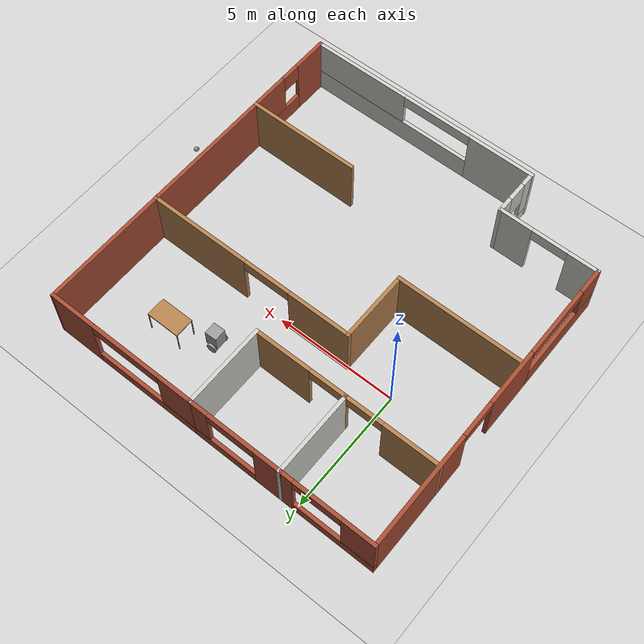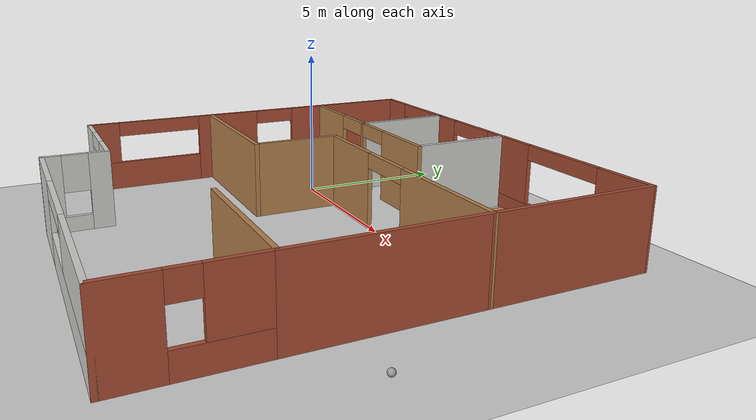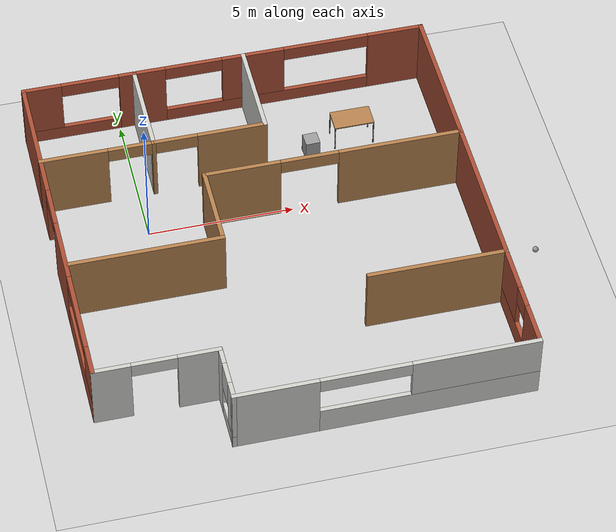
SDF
<sdf version="1.6">
 <world name="default">
  <model name="ground_plane">
   <static>1</static>
   <link name="link">
    <collision name="collision">
     <geometry><plane><normal>0 0 1</normal><size>100 100</size></plane></geometry>
     <surface><friction><ode><mu>100</mu><mu2>50</mu2></ode></friction></surface>
    </collision>
    <visual name="visual">
     <cast_shadows>0</cast_shadows>
     <geometry><plane><normal>0 0 1</normal><size>100 100</size></plane></geometry>
     <material>
      <script><uri>file://media/materials/scripts/gazebo.material</uri><name>Gazebo/Grey</name></script>
     </material>
    </visual>
   </link>
  </model>
  <model name="mybuilding">
   <pose>3.78931 -2.0956 0 0 -0 0</pose>
   <link name="Wall_100">
    <pose>-4.97405 -5.32475 0 0 -0 0</pose>
    <visual name="Wall_100_Visual_0">
     <pose>-1.47284 0 1.25 0 -0 0</pose>
     <geometry><box><size>1.30431 0.15 2.5</size></box></geometry>
     <material>
      <script><uri>file://media/materials/scripts/gazebo.material</uri><name>Gazebo/CeilingTiled</name></script>
      <ambient>0.435294 0.796078 0.67451 1</ambient>
     </material>
    </visual>
    <collision name="Wall_100_Collision_0">
     <geometry><box><size>1.30431 0.15 2.5</size></box></geometry>
     <pose>-1.47284 0 1.25 0 -0 0</pose>
    </collision>
    <visual name="Wall_100_Visual_1">
     <pose>1.40216 0 1.25 0 -0 0</pose>
     <geometry><box><size>1.44569 0.15 2.5</size></box></geometry>
     <material>
      <script><uri>file://media/materials/scripts/gazebo.material</uri><name>Gazebo/CeilingTiled</name></script>
      <ambient>0.435294 0.796078 0.67451 1</ambient>
     </material>
    </visual>
    <collision name="Wall_100_Collision_1">
     <geometry><box><size>1.44569 0.15 2.5</size></box></geometry>
     <pose>1.40216 0 1.25 0 -0 0</pose>
    </collision>
    <visual name="Wall_100_Visual_2">
     <pose>-0.07069 0 2.25 0 -0 0</pose>
     <geometry><box><size>1.5 0.15 0.5</size></box></geometry>
     <material>
      <script><uri>file://media/materials/scripts/gazebo.material</uri><name>Gazebo/CeilingTiled</name></script>
      <ambient>0.435294 0.796078 0.67451 1</ambient>
     </material>
    </visual>
    <collision name="Wall_100_Collision_2">
     <geometry><box><size>1.5 0.15 0.5</size></box></geometry>
     <pose>-0.07069 0 2.25 0 -0 0</pose>
    </collision>
   </link>
   <link name="Wall_102">
    <pose>-2.91535 -6.30192 0 0 0 -1.5708</pose>
    <visual name="Wall_102_Visual_0">
     <pose>-0.715877 0 1.25 0 -0 0</pose>
     <geometry><box><size>0.672904 0.15 2.5</size></box></geometry>
     <material>
      <script><uri>file://media/materials/scripts/gazebo.material</uri><name>Gazebo/CeilingTiled</name></script>
      <ambient>1 0.764706 0.305882 1</ambient>
     </material>
    </visual>
    <collision name="Wall_102_Collision_0">
     <geometry><box><size>0.672904 0.15 2.5</size></box></geometry>
     <pose>-0.715877 0 1.25 0 -0 0</pose>
    </collision>
    <visual name="Wall_102_Visual_1">
     <pose>0.336452 0 0.25 0 -0 0</pose>
     <geometry><box><size>1.43175 0.15 0.5</size></box></geometry>
     <material>
      <script><uri>file://media/materials/scripts/gazebo.material</uri><name>Gazebo/CeilingTiled</name></script>
      <ambient>1 0.764706 0.305882 1</ambient>
     </material>
    </visual>
    <collision name="Wall_102_Collision_1">
     <geometry><box><size>1.43175 0.15 0.5</size></box></geometry>
     <pose>0.336452 0 0.25 0 -0 0</pose>
    </collision>
    <visual name="Wall_102_Visual_2">
     <pose>0.736452 0 1.5 0 -0 0</pose>
     <geometry><box><size>0.631753 0.15 2</size></box></geometry>
     <material>
      <script><uri>file://media/materials/scripts/gazebo.material</uri><name>Gazebo/CeilingTiled</name></script>
      <ambient>1 0.764706 0.305882 1</ambient>
     </material>
    </visual>
    <collision name="Wall_102_Collision_2">
     <geometry><box><size>0.631753 0.15 2</size></box></geometry>
     <pose>0.736452 0 1.5 0 -0 0</pose>
    </collision>
    <visual name="Wall_102_Visual_3">
     <pose>0.020576 0 1.9 0 -0 0</pose>
     <geometry><box><size>0.8 0.15 1.2</size></box></geometry>
     <material>
      <script><uri>file://media/materials/scripts/gazebo.material</uri><name>Gazebo/CeilingTiled</name></script>
      <ambient>1 0.764706 0.305882 1</ambient>
     </material>
    </visual>
    <collision name="Wall_102_Collision_3">
     <geometry><box><size>0.8 0.15 1.2</size></box></geometry>
     <pose>0.020576 0 1.9 0 -0 0</pose>
    </collision>
   </link>
   <link name="Wall_104">
    <pose>2.05282 -7.27925 0 0 0 -3.1e-05</pose>
    <visual name="Wall_104_Visual_0">
     <pose>-3.62649 0 1.25 0 -0 0</pose>
     <geometry><box><size>2.85075 0.15 2.5</size></box></geometry>
     <material>
      <script><uri>file://media/materials/scripts/gazebo.material</uri><name>Gazebo/CeilingTiled</name></script>
      <ambient>0.435294 0.796078 0.67451 1</ambient>
     </material>
    </visual>
    <collision name="Wall_104_Collision_0">
     <geometry><box><size>2.85075 0.15 2.5</size></box></geometry>
     <pose>-3.62649 0 1.25 0 -0 0</pose>
    </collision>
    <visual name="Wall_104_Visual_1">
     <pose>1.42538 0 0.5 0 -0 0</pose>
     <geometry><box><size>7.25299 0.15 1</size></box></geometry>
     <material>
      <script><uri>file://media/materials/scripts/gazebo.material</uri><name>Gazebo/CeilingTiled</name></script>
      <ambient>0.435294 0.796078 0.67451 1</ambient>
     </material>
    </visual>
    <collision name="Wall_104_Collision_1">
     <geometry><box><size>7.25299 0.15 1</size></box></geometry>
     <pose>1.42538 0 0.5 0 -0 0</pose>
    </collision>
    <visual name="Wall_104_Visual_2">
     <pose>2.92537 0 1.75 0 -0 0</pose>
     <geometry><box><size>4.25299 0.15 1.5</size></box></geometry>
     <material>
      <script><uri>file://media/materials/scripts/gazebo.material</uri><name>Gazebo/CeilingTiled</name></script>
      <ambient>0.435294 0.796078 0.67451 1</ambient>
     </material>
    </visual>
    <collision name="Wall_104_Collision_2">
     <geometry><box><size>4.25299 0.15 1.5</size></box></geometry>
     <pose>2.92537 0 1.75 0 -0 0</pose>
    </collision>
    <visual name="Wall_104_Visual_3">
     <pose>-0.70112 0 2.25 0 -0 0</pose>
     <geometry><box><size>3 0.15 0.5</size></box></geometry>
     <material>
      <script><uri>file://media/materials/scripts/gazebo.material</uri><name>Gazebo/CeilingTiled</name></script>
      <ambient>0.435294 0.796078 0.67451 1</ambient>
     </material>
    </visual>
    <collision name="Wall_104_Collision_3">
     <geometry><box><size>3 0.15 0.5</size></box></geometry>
     <pose>-0.70112 0 2.25 0 -0 0</pose>
    </collision>
   </link>
   <link name="Wall_106">
    <pose>7.02969 -5.3499 0 0 -0 1.5708</pose>
    <visual name="Wall_106_Visual_0">
     <pose>-1.23742 0 1.25 0 -0 0</pose>
     <geometry><box><size>1.53383 0.15 2.5</size></box></geometry>
     <material>
      <script><uri>file://media/materials/scripts/gazebo.material</uri><name>Gazebo/Bricks</name></script>
      <ambient>1 1 1 1</ambient>
     </material>
    </visual>
    <collision name="Wall_106_Collision_0">
     <geometry><box><size>1.53383 0.15 2.5</size></box></geometry>
     <pose>-1.23742 0 1.25 0 -0 0</pose>
    </collision>
    <visual name="Wall_106_Visual_1">
     <pose>0.766915 0 0.375 0 -0 0</pose>
     <geometry><box><size>2.47484 0.15 0.75</size></box></geometry>
     <material>
      <script><uri>file://media/materials/scripts/gazebo.material</uri><name>Gazebo/Bricks</name></script>
      <ambient>1 1 1 1</ambient>
     </material>
    </visual>
    <collision name="Wall_106_Collision_1">
     <geometry><box><size>2.47484 0.15 0.75</size></box></geometry>
     <pose>0.766915 0 0.375 0 -0 0</pose>
    </collision>
    <visual name="Wall_106_Visual_2">
     <pose>1.16691 0 1.625 0 -0 0</pose>
     <geometry><box><size>1.67484 0.15 1.75</size></box></geometry>
     <material>
      <script><uri>file://media/materials/scripts/gazebo.material</uri><name>Gazebo/Bricks</name></script>
      <ambient>1 1 1 1</ambient>
     </material>
    </visual>
    <collision name="Wall_106_Collision_2">
     <geometry><box><size>1.67484 0.15 1.75</size></box></geometry>
     <pose>1.16691 0 1.625 0 -0 0</pose>
    </collision>
    <visual name="Wall_106_Visual_3">
     <pose>-0.070504 0 2.125 0 -0 0</pose>
     <geometry><box><size>0.8 0.15 0.75</size></box></geometry>
     <material>
      <script><uri>file://media/materials/scripts/gazebo.material</uri><name>Gazebo/Bricks</name></script>
      <ambient>1 1 1 1</ambient>
     </material>
    </visual>
    <collision name="Wall_106_Collision_3">
     <geometry><box><size>0.8 0.15 0.75</size></box></geometry>
     <pose>-0.070504 0 2.125 0 -0 0</pose>
    </collision>
   </link>
   <link name="Wall_108">
    <collision name="Wall_108_Collision">
     <geometry><box><size>4.75 0.15 2.5</size></box></geometry>
     <pose>0 0 1.25 0 -0 0</pose>
    </collision>
    <visual name="Wall_108_Visual">
     <pose>0 0 1.25 0 -0 0</pose>
     <geometry><box><size>4.75 0.15 2.5</size></box></geometry>
     <material>
      <script><uri>file://media/materials/scripts/gazebo.material</uri><name>Gazebo/Wood</name></script>
      <ambient>1 1 0.498039 1</ambient>
     </material>
    </visual>
    <pose>4.72945 -3.42056 0 0 0 -3.14152</pose>
   </link>
   <link name="Wall_110">
    <collision name="Wall_110_Collision">
     <geometry><box><size>5.666 0.15 2.5</size></box></geometry>
     <pose>0 0 1.25 0 -0 0</pose>
    </collision>
    <visual name="Wall_110_Visual">
     <pose>0 0 1.25 0 -0 0</pose>
     <geometry><box><size>5.666 0.15 2.5</size></box></geometry>
     <material>
      <script><uri>file://media/materials/scripts/gazebo.material</uri><name>Gazebo/Bricks</name></script>
      <ambient>1 1 1 1</ambient>
     </material>
    </visual>
    <pose>7.02969 -0.662398 0 0 -0 1.5708</pose>
   </link>
   <link name="Wall_112">
    <pose>2.60469 2.0956 0 0 -0 3.14159</pose>
    <visual name="Wall_112_Visual_0">
     <pose>-2.34058 0 1.25 0 -0 0</pose>
     <geometry><box><size>4.31883 0.15 2.5</size></box></geometry>
     <material>
      <script><uri>file://media/materials/scripts/gazebo.material</uri><name>Gazebo/Wood</name></script>
      <ambient>1 1 0.498039 1</ambient>
     </material>
    </visual>
    <collision name="Wall_112_Collision_0">
     <geometry><box><size>4.31883 0.15 2.5</size></box></geometry>
     <pose>-2.34058 0 1.25 0 -0 0</pose>
    </collision>
    <visual name="Wall_112_Visual_1">
     <pose>3.15942 0 1.25 0 -0 0</pose>
     <geometry><box><size>2.68117 0.15 2.5</size></box></geometry>
     <material>
      <script><uri>file://media/materials/scripts/gazebo.material</uri><name>Gazebo/Wood</name></script>
      <ambient>1 1 0.498039 1</ambient>
     </material>
    </visual>
    <collision name="Wall_112_Collision_1">
     <geometry><box><size>2.68117 0.15 2.5</size></box></geometry>
     <pose>3.15942 0 1.25 0 -0 0</pose>
    </collision>
    <visual name="Wall_112_Visual_2">
     <pose>0.81883 0 2.25 0 -0 0</pose>
     <geometry><box><size>2 0.15 0.5</size></box></geometry>
     <material>
      <script><uri>file://media/materials/scripts/gazebo.material</uri><name>Gazebo/Wood</name></script>
      <ambient>1 1 0.498039 1</ambient>
     </material>
    </visual>
    <collision name="Wall_112_Collision_2">
     <geometry><box><size>2 0.15 0.5</size></box></geometry>
     <pose>0.81883 0 2.25 0 -0 0</pose>
    </collision>
   </link>
   <link name="Wall_114">
    <collision name="Wall_114_Collision">
     <geometry><box><size>5.33367 0.15 2.5</size></box></geometry>
     <pose>0 0 1.25 0 -0 0</pose>
    </collision>
    <visual name="Wall_114_Visual">
     <pose>0 0 1.25 0 -0 0</pose>
     <geometry><box><size>5.33367 0.15 2.5</size></box></geometry>
     <material>
      <script><uri>file://media/materials/scripts/gazebo.material</uri><name>Gazebo/Bricks</name></script>
      <ambient>1 1 1 1</ambient>
     </material>
    </visual>
    <pose>7.02493 4.68743 0 0 -0 1.57263</pose>
   </link>
   <link name="Wall_119">
    <pose>3.84517 7.27926 0 0 -0 3.14159</pose>
    <visual name="Wall_119_Visual_0">
     <pose>-2.25429 0 1.25 0 -0 0</pose>
     <geometry><box><size>1.99143 0.15 2.5</size></box></geometry>
     <material>
      <script><uri>file://media/materials/scripts/gazebo.material</uri><name>Gazebo/Bricks</name></script>
      <ambient>1 1 1 1</ambient>
     </material>
    </visual>
    <collision name="Wall_119_Collision_0">
     <geometry><box><size>1.99143 0.15 2.5</size></box></geometry>
     <pose>-2.25429 0 1.25 0 -0 0</pose>
    </collision>
    <visual name="Wall_119_Visual_1">
     <pose>0.995713 0 0.25 0 -0 0</pose>
     <geometry><box><size>4.50857 0.15 0.5</size></box></geometry>
     <material>
      <script><uri>file://media/materials/scripts/gazebo.material</uri><name>Gazebo/Bricks</name></script>
      <ambient>1 1 1 1</ambient>
     </material>
    </visual>
    <collision name="Wall_119_Collision_1">
     <geometry><box><size>4.50857 0.15 0.5</size></box></geometry>
     <pose>0.995713 0 0.25 0 -0 0</pose>
    </collision>
    <visual name="Wall_119_Visual_2">
     <pose>2.49571 0 1.5 0 -0 0</pose>
     <geometry><box><size>1.50857 0.15 2</size></box></geometry>
     <material>
      <script><uri>file://media/materials/scripts/gazebo.material</uri><name>Gazebo/Bricks</name></script>
      <ambient>1 1 1 1</ambient>
     </material>
    </visual>
    <collision name="Wall_119_Collision_2">
     <geometry><box><size>1.50857 0.15 2</size></box></geometry>
     <pose>2.49571 0 1.5 0 -0 0</pose>
    </collision>
    <visual name="Wall_119_Visual_3">
     <pose>0.241426 0 2.25 0 -0 0</pose>
     <geometry><box><size>3 0.15 0.5</size></box></geometry>
     <material>
      <script><uri>file://media/materials/scripts/gazebo.material</uri><name>Gazebo/Bricks</name></script>
      <ambient>1 1 1 1</ambient>
     </material>
    </visual>
    <collision name="Wall_119_Collision_3">
     <geometry><box><size>3 0.15 0.5</size></box></geometry>
     <pose>0.241426 0 2.25 0 -0 0</pose>
    </collision>
   </link>
   <link name="Wall_121">
    <collision name="Wall_121_Collision">
     <geometry><box><size>3.5 0.15 2.5</size></box></geometry>
     <pose>0 0 1.25 0 -0 0</pose>
    </collision>
    <visual name="Wall_121_Visual">
     <pose>0 0 1.25 0 -0 0</pose>
     <geometry><box><size>3.5 0.15 2.5</size></box></geometry>
     <material>
      <script><uri>file://media/materials/scripts/gazebo.material</uri><name>Gazebo/CeilingTiled</name></script>
      <ambient>0.333333 0.333333 0.498039 1</ambient>
     </material>
    </visual>
    <pose>0.670175 5.60426 0 0 0 -1.5708</pose>
   </link>
   <link name="Wall_123">
    <pose>-1.25483 3.92926 0 0 -0 3.14159</pose>
    <visual name="Wall_123_Visual_0">
     <pose>-0.793117 0 1.25 0 -0 0</pose>
     <geometry><box><size>2.41377 0.15 2.5</size></box></geometry>
     <material>
      <script><uri>file://media/materials/scripts/gazebo.material</uri><name>Gazebo/Wood</name></script>
      <ambient>1 1 1 1</ambient>
     </material>
    </visual>
    <collision name="Wall_123_Collision_0">
     <geometry><box><size>2.41377 0.15 2.5</size></box></geometry>
     <pose>-0.793117 0 1.25 0 -0 0</pose>
    </collision>
    <visual name="Wall_123_Visual_1">
     <pose>1.95688 0 1.25 0 -0 0</pose>
     <geometry><box><size>0.086235 0.15 2.5</size></box></geometry>
     <material>
      <script><uri>file://media/materials/scripts/gazebo.material</uri><name>Gazebo/Wood</name></script>
      <ambient>1 1 1 1</ambient>
     </material>
    </visual>
    <collision name="Wall_123_Collision_1">
     <geometry><box><size>0.086235 0.15 2.5</size></box></geometry>
     <pose>1.95688 0 1.25 0 -0 0</pose>
    </collision>
    <visual name="Wall_123_Visual_2">
     <pose>1.16376 0 2.25 0 -0 0</pose>
     <geometry><box><size>1.5 0.15 0.5</size></box></geometry>
     <material>
      <script><uri>file://media/materials/scripts/gazebo.material</uri><name>Gazebo/Wood</name></script>
      <ambient>1 1 1 1</ambient>
     </material>
    </visual>
    <collision name="Wall_123_Collision_2">
     <geometry><box><size>1.5 0.15 0.5</size></box></geometry>
     <pose>1.16376 0 2.25 0 -0 0</pose>
    </collision>
   </link>
   <link name="Wall_124">
    <collision name="Wall_124_Collision">
     <geometry><box><size>3.5 0.15 2.5</size></box></geometry>
     <pose>0 0 1.25 0 -0 0</pose>
    </collision>
    <visual name="Wall_124_Visual">
     <pose>0 0 1.25 0 -0 0</pose>
     <geometry><box><size>3.5 0.15 2.5</size></box></geometry>
     <material>
      <script><uri>file://media/materials/scripts/gazebo.material</uri><name>Gazebo/CeilingTiled</name></script>
      <ambient>0.333333 0.333333 0.498039 1</ambient>
     </material>
    </visual>
    <pose>-3.17983 5.60426 0 0 -0 1.5708</pose>
   </link>
   <link name="Wall_125">
    <pose>-1.25483 7.27926 0 0 -0 0</pose>
    <visual name="Wall_125_Visual_0">
     <pose>-1.41847 0 1.25 0 -0 0</pose>
     <geometry><box><size>1.16306 0.15 2.5</size></box></geometry>
     <material>
      <script><uri>file://media/materials/scripts/gazebo.material</uri><name>Gazebo/Bricks</name></script>
      <ambient>1 1 1 1</ambient>
     </material>
    </visual>
    <collision name="Wall_125_Collision_0">
     <geometry><box><size>1.16306 0.15 2.5</size></box></geometry>
     <pose>-1.41847 0 1.25 0 -0 0</pose>
    </collision>
    <visual name="Wall_125_Visual_1">
     <pose>0.581531 0 0.25 0 -0 0</pose>
     <geometry><box><size>2.83694 0.15 0.5</size></box></geometry>
     <material>
      <script><uri>file://media/materials/scripts/gazebo.material</uri><name>Gazebo/Bricks</name></script>
      <ambient>1 1 1 1</ambient>
     </material>
    </visual>
    <collision name="Wall_125_Collision_1">
     <geometry><box><size>2.83694 0.15 0.5</size></box></geometry>
     <pose>0.581531 0 0.25 0 -0 0</pose>
    </collision>
    <visual name="Wall_125_Visual_2">
     <pose>1.58153 0 1.5 0 -0 0</pose>
     <geometry><box><size>0.836939 0.15 2</size></box></geometry>
     <material>
      <script><uri>file://media/materials/scripts/gazebo.material</uri><name>Gazebo/Bricks</name></script>
      <ambient>1 1 1 1</ambient>
     </material>
    </visual>
    <collision name="Wall_125_Collision_2">
     <geometry><box><size>0.836939 0.15 2</size></box></geometry>
     <pose>1.58153 0 1.5 0 -0 0</pose>
    </collision>
    <visual name="Wall_125_Visual_3">
     <pose>0.163061 0 2.25 0 -0 0</pose>
     <geometry><box><size>2 0.15 0.5</size></box></geometry>
     <material>
      <script><uri>file://media/materials/scripts/gazebo.material</uri><name>Gazebo/Bricks</name></script>
      <ambient>1 1 1 1</ambient>
     </material>
    </visual>
    <collision name="Wall_125_Collision_3">
     <geometry><box><size>2 0.15 0.5</size></box></geometry>
     <pose>0.163061 0 2.25 0 -0 0</pose>
    </collision>
   </link>
   <link name="Wall_127">
    <pose>-5.10482 7.27926 0 0 -0 3.14159</pose>
    <visual name="Wall_127_Visual_0">
     <pose>-1.69078 0 1.25 0 -0 0</pose>
     <geometry><box><size>0.618444 0.15 2.5</size></box></geometry>
     <material>
      <script><uri>file://media/materials/scripts/gazebo.material</uri><name>Gazebo/Bricks</name></script>
      <ambient>1 1 1 1</ambient>
     </material>
    </visual>
    <collision name="Wall_127_Collision_0">
     <geometry><box><size>0.618444 0.15 2.5</size></box></geometry>
     <pose>-1.69078 0 1.25 0 -0 0</pose>
    </collision>
    <visual name="Wall_127_Visual_1">
     <pose>0.309222 0 0.25 0 -0 0</pose>
     <geometry><box><size>3.38156 0.15 0.5</size></box></geometry>
     <material>
      <script><uri>file://media/materials/scripts/gazebo.material</uri><name>Gazebo/Bricks</name></script>
      <ambient>1 1 1 1</ambient>
     </material>
    </visual>
    <collision name="Wall_127_Collision_1">
     <geometry><box><size>3.38156 0.15 0.5</size></box></geometry>
     <pose>0.309222 0 0.25 0 -0 0</pose>
    </collision>
    <visual name="Wall_127_Visual_2">
     <pose>1.30922 0 1.5 0 -0 0</pose>
     <geometry><box><size>1.38156 0.15 2</size></box></geometry>
     <material>
      <script><uri>file://media/materials/scripts/gazebo.material</uri><name>Gazebo/Bricks</name></script>
      <ambient>1 1 1 1</ambient>
     </material>
    </visual>
    <collision name="Wall_127_Collision_2">
     <geometry><box><size>1.38156 0.15 2</size></box></geometry>
     <pose>1.30922 0 1.5 0 -0 0</pose>
    </collision>
    <visual name="Wall_127_Visual_3">
     <pose>-0.381556 0 2.25 0 -0 0</pose>
     <geometry><box><size>2 0.15 0.5</size></box></geometry>
     <material>
      <script><uri>file://media/materials/scripts/gazebo.material</uri><name>Gazebo/Bricks</name></script>
      <ambient>1 1 1 1</ambient>
     </material>
    </visual>
    <collision name="Wall_127_Collision_3">
     <geometry><box><size>2 0.15 0.5</size></box></geometry>
     <pose>-0.381556 0 2.25 0 -0 0</pose>
    </collision>
   </link>
   <link name="Wall_128">
    <pose>-7.02982 0.979263 0 0 0 -1.5708</pose>
    <visual name="Wall_128_Visual_0">
     <pose>-3.99417 0 1.25 0 -0 0</pose>
     <geometry><box><size>4.76166 0.15 2.5</size></box></geometry>
     <material>
      <script><uri>file://media/materials/scripts/gazebo.material</uri><name>Gazebo/Bricks</name></script>
      <ambient>1 1 1 1</ambient>
     </material>
    </visual>
    <collision name="Wall_128_Collision_0">
     <geometry><box><size>4.76166 0.15 2.5</size></box></geometry>
     <pose>-3.99417 0 1.25 0 -0 0</pose>
    </collision>
    <visual name="Wall_128_Visual_1">
     <pose>1.07472 0 1.25 0 -0 0</pose>
     <geometry><box><size>2.37612 0.15 2.5</size></box></geometry>
     <material>
      <script><uri>file://media/materials/scripts/gazebo.material</uri><name>Gazebo/Bricks</name></script>
      <ambient>1 1 1 1</ambient>
     </material>
    </visual>
    <collision name="Wall_128_Collision_1">
     <geometry><box><size>2.37612 0.15 2.5</size></box></geometry>
     <pose>1.07472 0 1.25 0 -0 0</pose>
    </collision>
    <visual name="Wall_128_Visual_2">
     <pose>4.31889 0 0.5 0 -0 0</pose>
     <geometry><box><size>4.11222 0.15 1</size></box></geometry>
     <material>
      <script><uri>file://media/materials/scripts/gazebo.material</uri><name>Gazebo/Bricks</name></script>
      <ambient>1 1 1 1</ambient>
     </material>
    </visual>
    <collision name="Wall_128_Collision_2">
     <geometry><box><size>4.11222 0.15 1</size></box></geometry>
     <pose>4.31889 0 0.5 0 -0 0</pose>
    </collision>
    <visual name="Wall_128_Visual_3">
     <pose>5.81889 0 1.75 0 -0 0</pose>
     <geometry><box><size>1.11222 0.15 1.5</size></box></geometry>
     <material>
      <script><uri>file://media/materials/scripts/gazebo.material</uri><name>Gazebo/Bricks</name></script>
      <ambient>1 1 1 1</ambient>
     </material>
    </visual>
    <collision name="Wall_128_Collision_3">
     <geometry><box><size>1.11222 0.15 1.5</size></box></geometry>
     <pose>5.81889 0 1.75 0 -0 0</pose>
    </collision>
    <visual name="Wall_128_Visual_4">
     <pose>-0.863345 0 2.25 0 -0 0</pose>
     <geometry><box><size>1.5 0.15 0.5</size></box></geometry>
     <material>
      <script><uri>file://media/materials/scripts/gazebo.material</uri><name>Gazebo/Bricks</name></script>
      <ambient>1 1 1 1</ambient>
     </material>
    </visual>
    <collision name="Wall_128_Collision_4">
     <geometry><box><size>1.5 0.15 0.5</size></box></geometry>
     <pose>-0.863345 0 2.25 0 -0 0</pose>
    </collision>
    <visual name="Wall_128_Visual_5">
     <pose>3.76278 0 2.25 0 -0 0</pose>
     <geometry><box><size>3 0.15 0.5</size></box></geometry>
     <material>
      <script><uri>file://media/materials/scripts/gazebo.material</uri><name>Gazebo/Bricks</name></script>
      <ambient>1 1 1 1</ambient>
     </material>
    </visual>
    <collision name="Wall_128_Collision_5">
     <geometry><box><size>3 0.15 0.5</size></box></geometry>
     <pose>3.76278 0 2.25 0 -0 0</pose>
    </collision>
   </link>
   <link name="Wall_130">
    <pose>-5.10482 3.92926 0 0 -0 3.14159</pose>
    <visual name="Wall_130_Visual_0">
     <pose>-1.93168 0 1.25 0 -0 0</pose>
     <geometry><box><size>0.136646 0.15 2.5</size></box></geometry>
     <material>
      <script><uri>file://media/materials/scripts/gazebo.material</uri><name>Gazebo/Wood</name></script>
      <ambient>1 1 1 1</ambient>
     </material>
    </visual>
    <collision name="Wall_130_Collision_0">
     <geometry><box><size>0.136646 0.15 2.5</size></box></geometry>
     <pose>-1.93168 0 1.25 0 -0 0</pose>
    </collision>
    <visual name="Wall_130_Visual_1">
     <pose>0.818323 0 1.25 0 -0 0</pose>
     <geometry><box><size>2.36335 0.15 2.5</size></box></geometry>
     <material>
      <script><uri>file://media/materials/scripts/gazebo.material</uri><name>Gazebo/Wood</name></script>
      <ambient>1 1 1 1</ambient>
     </material>
    </visual>
    <collision name="Wall_130_Collision_1">
     <geometry><box><size>2.36335 0.15 2.5</size></box></geometry>
     <pose>0.818323 0 1.25 0 -0 0</pose>
    </collision>
    <visual name="Wall_130_Visual_2">
     <pose>-1.11335 0 2.25 0 -0 0</pose>
     <geometry><box><size>1.5 0.15 0.5</size></box></geometry>
     <material>
      <script><uri>file://media/materials/scripts/gazebo.material</uri><name>Gazebo/Wood</name></script>
      <ambient>1 1 1 1</ambient>
     </material>
    </visual>
    <collision name="Wall_130_Collision_2">
     <geometry><box><size>1.5 0.15 0.5</size></box></geometry>
     <pose>-1.11335 0 2.25 0 -0 0</pose>
    </collision>
   </link>
   <link name="Wall_132">
    <collision name="Wall_132_Collision">
     <geometry><box><size>3 0.15 2.5</size></box></geometry>
     <pose>0 0 1.25 0 -0 0</pose>
    </collision>
    <visual name="Wall_132_Visual">
     <pose>0 0 1.25 0 -0 0</pose>
     <geometry><box><size>3 0.15 2.5</size></box></geometry>
     <material>
      <script><uri>file://media/materials/scripts/gazebo.material</uri><name>Gazebo/Wood</name></script>
      <ambient>1 1 1 1</ambient>
     </material>
    </visual>
    <pose>-1.82031 0.670602 0 0 0 -1.5708</pose>
   </link>
   <link name="Wall_133">
    <collision name="Wall_133_Collision">
     <geometry><box><size>5.25 0.15 2.5</size></box></geometry>
     <pose>0 0 1.25 0 -0 0</pose>
    </collision>
    <visual name="Wall_133_Visual">
     <pose>0 0 1.25 0 -0 0</pose>
     <geometry><box><size>5.25 0.15 2.5</size></box></geometry>
     <material>
      <script><uri>file://media/materials/scripts/gazebo.material</uri><name>Gazebo/Wood</name></script>
      <ambient>1 1 1 1</ambient>
     </material>
    </visual>
    <pose>-4.37031 -0.754398 0 0 -0 3.14159</pose>
   </link>
   <static>1</static>
  </model>
  <model name="table">
   <static>0</static>
   <link name="link">
    <collision name="surface">
     <pose>0 0 1 0 -0 0</pose>
     <geometry><box><size>1.5 0.8 0.03</size></box></geometry>
     <surface><friction><ode><mu>0.6</mu><mu2>0.6</mu2></ode></friction></surface>
    </collision>
    <visual name="visual1">
     <pose>0 0 1 0 -0 0</pose>
     <geometry><box><size>1.4 0.8 0.04</size></box></geometry>
     <material>
      <script><uri>file://media/materials/scripts/gazebo.material</uri><name>Gazebo/Wood</name></script>
     </material>
    </visual>
    <collision name="front_left_leg">
     <pose>0.68 0.38 0.5 0 -0 0</pose>
     <geometry><cylinder><radius>0.02</radius><length>1</length></cylinder></geometry>
    </collision>
    <visual name="front_left_leg">
     <pose>0.68 0.38 0.5 0 -0 0</pose>
     <geometry><cylinder><radius>0.02</radius><length>1</length></cylinder></geometry>
     <material>
      <script><uri>file://media/materials/scripts/gazebo.material</uri><name>Gazebo/Grey</name></script>
     </material>
    </visual>
    <collision name="front_right_leg">
     <pose>0.68 -0.38 0.5 0 -0 0</pose>
     <geometry><cylinder><radius>0.02</radius><length>1</length></cylinder></geometry>
    </collision>
    <visual name="front_right_leg">
     <pose>0.68 -0.38 0.5 0 -0 0</pose>
     <geometry><cylinder><radius>0.02</radius><length>1</length></cylinder></geometry>
     <material>
      <script><uri>file://media/materials/scripts/gazebo.material</uri><name>Gazebo/Grey</name></script>
     </material>
    </visual>
    <collision name="back_right_leg">
     <pose>-0.68 -0.38 0.5 0 -0 0</pose>
     <geometry><cylinder><radius>0.02</radius><length>1</length></cylinder></geometry>
    </collision>
    <visual name="back_right_leg">
     <pose>-0.68 -0.38 0.5 0 -0 0</pose>
     <geometry><cylinder><radius>0.02</radius><length>1</length></cylinder></geometry>
     <material>
      <script><uri>file://media/materials/scripts/gazebo.material</uri><name>Gazebo/Grey</name></script>
     </material>
    </visual>
    <collision name="back_left_leg">
     <pose>-0.68 0.38 0.5 0 -0 0</pose>
     <geometry><cylinder><radius>0.02</radius><length>1</length></cylinder></geometry>
    </collision>
    <visual name="back_left_leg">
     <pose>-0.68 0.38 0.5 0 -0 0</pose>
     <geometry><cylinder><radius>0.02</radius><length>1</length></cylinder></geometry>
     <material>
      <script><uri>file://media/materials/scripts/gazebo.material</uri><name>Gazebo/Grey</name></script>
     </material>
    </visual>
    <inertial>
     <inertia><ixx>1</ixx><ixy>0</ixy><ixz>0</ixz><iyy>1</iyy><iyz>0</iyz><izz>1</izz></inertia>
     <mass>1</mass>
    </inertial>
   </link>
   <pose>7.76511 2.8118 -9e-06 0 -1e-06 0</pose>
  </model>
  <model name="myrobot_0">
   <link name="link_0">
    <pose>0.0125 0 0.28125 0 -0 0</pose>
    <inertial>
     <mass>1</mass>
     <inertia>
      <ixx>0.166667</ixx>
      <ixy>0</ixy>
      <ixz>0</ixz>
      <iyy>0.166667</iyy>
      <iyz>0</iyz>
      <izz>0.166667</izz>
     </inertia>
    </inertial>
    <visual name="visual">
     <geometry><box><size>0.5 0.5 0.75</size></box></geometry>
     <material>
      <lighting>1</lighting>
      <script><uri>file://media/materials/scripts/gazebo.material</uri><name>Gazebo/Grey</name></script>
      <ambient>0.3 0.3 0.3 1</ambient>
      <diffuse>0.7 0.7 0.7 1</diffuse>
      <specular>0.01 0.01 0.01 1</specular>
      <emissive>0 0 0 1</emissive>
      <shader type="vertex"><normal_map>__default__</normal_map></shader>
     </material>
    </visual>
    <collision name="collision">
     <geometry><box><size>0.5 0.5 0.75</size></box></geometry>
     <surface>
      <friction>
       <ode><mu>1</mu><mu2>1</mu2><fdir1>0 0 0</fdir1><slip1>0</slip1><slip2>0</slip2></ode>
       <torsional>
        <coefficient>1</coefficient>
        <patch_radius>0</patch_radius>
        <surface_radius>0</surface_radius>
        <use_patch_radius>1</use_patch_radius>
        <ode><slip>0</slip></ode>
       </torsional>
      </friction>
      <bounce><restitution_coefficient>0</restitution_coefficient><threshold>1e+06</threshold></bounce>
      <contact>
       <collide_without_contact>0</collide_without_contact>
       <collide_without_contact_bitmask>1</collide_without_contact_bitmask>
       <collide_bitmask>1</collide_bitmask>
       <ode>
        <soft_cfm>0</soft_cfm>
        <soft_erp>0.2</soft_erp>
        <kp>1e+13</kp>
        <kd>1</kd>
        <max_vel>0.01</max_vel>
        <min_depth>0</min_depth>
       </ode>
       <bullet>
        <split_impulse>1</split_impulse>
        <split_impulse_penetration_threshold>-0.01</split_impulse_penetration_threshold>
        <soft_cfm>0</soft_cfm>
        <soft_erp>0.2</soft_erp>
        <kp>1e+13</kp>
        <kd>1</kd>
       </bullet>
      </contact>
     </surface>
    </collision>
   </link>
   <link name="link_1">
    <pose>-0.0375 0.300019 -0.09375 1.5707 -0 0</pose>
    <inertial>
     <mass>1</mass>
     <inertia><ixx>0.145833</ixx><ixy>0</ixy><ixz>0</ixz><iyy>0.145833</iyy><iyz>0</iyz><izz>0.125</izz></inertia>
    </inertial>
    <visual name="visual">
     <geometry><cylinder><radius>0.2</radius><length>0.1</length></cylinder></geometry>
     <material>
      <lighting>1</lighting>
      <script><uri>file://media/materials/scripts/gazebo.material</uri><name>Gazebo/Grey</name></script>
      <ambient>0.3 0.3 0.3 1</ambient>
      <diffuse>0.7 0.7 0.7 1</diffuse>
      <specular>0.01 0.01 0.01 1</specular>
      <emissive>0 0 0 1</emissive>
      <shader type="vertex"><normal_map>__default__</normal_map></shader>
     </material>
    </visual>
    <collision name="collision">
     <geometry><cylinder><radius>0.2</radius><length>0.1</length></cylinder></geometry>
     <surface>
      <friction>
       <ode><mu>1</mu><mu2>1</mu2><fdir1>0 0 0</fdir1><slip1>0</slip1><slip2>0</slip2></ode>
       <torsional>
        <coefficient>1</coefficient>
        <patch_radius>0</patch_radius>
        <surface_radius>0</surface_radius>
        <use_patch_radius>1</use_patch_radius>
        <ode><slip>0</slip></ode>
       </torsional>
      </friction>
      <bounce><restitution_coefficient>0</restitution_coefficient><threshold>1e+06</threshold></bounce>
      <contact>
       <collide_without_contact>0</collide_without_contact>
       <collide_without_contact_bitmask>1</collide_without_contact_bitmask>
       <collide_bitmask>1</collide_bitmask>
       <ode>
        <soft_cfm>0</soft_cfm>
        <soft_erp>0.2</soft_erp>
        <kp>1e+13</kp>
        <kd>1</kd>
        <max_vel>0.01</max_vel>
        <min_depth>0</min_depth>
       </ode>
       <bullet>
        <split_impulse>1</split_impulse>
        <split_impulse_penetration_threshold>-0.01</split_impulse_penetration_threshold>
        <soft_cfm>0</soft_cfm>
        <soft_erp>0.2</soft_erp>
        <kp>1e+13</kp>
        <kd>1</kd>
       </bullet>
      </contact>
     </surface>
    </collision>
   </link>
   <link name="link_1_clone">
    <pose>-0.0375 -0.300019 -0.09375 1.5707 -0 0</pose>
    <inertial>
     <mass>1</mass>
     <inertia><ixx>0.145833</ixx><ixy>0</ixy><ixz>0</ixz><iyy>0.145833</iyy><iyz>0</iyz><izz>0.125</izz></inertia>
    </inertial>
    <visual name="visual">
     <geometry><cylinder><radius>0.2</radius><length>0.1</length></cylinder></geometry>
     <material>
      <lighting>1</lighting>
      <script><uri>file://media/materials/scripts/gazebo.material</uri><name>Gazebo/Grey</name></script>
      <ambient>0.3 0.3 0.3 1</ambient>
      <diffuse>0.7 0.7 0.7 1</diffuse>
      <specular>0.01 0.01 0.01 1</specular>
      <emissive>0 0 0 1</emissive>
      <shader type="vertex"><normal_map>__default__</normal_map></shader>
     </material>
    </visual>
    <collision name="collision">
     <geometry><cylinder><radius>0.2</radius><length>0.1</length></cylinder></geometry>
     <surface>
      <friction>
       <ode><mu>1</mu><mu2>1</mu2><fdir1>0 0 0</fdir1><slip1>0</slip1><slip2>0</slip2></ode>
       <torsional>
        <coefficient>1</coefficient>
        <patch_radius>0</patch_radius>
        <surface_radius>0</surface_radius>
        <use_patch_radius>1</use_patch_radius>
        <ode><slip>0</slip></ode>
       </torsional>
      </friction>
      <bounce><restitution_coefficient>0</restitution_coefficient><threshold>1e+06</threshold></bounce>
      <contact>
       <collide_without_contact>0</collide_without_contact>
       <collide_without_contact_bitmask>1</collide_without_contact_bitmask>
       <collide_bitmask>1</collide_bitmask>
       <ode>
        <soft_cfm>0</soft_cfm>
        <soft_erp>0.2</soft_erp>
        <kp>1e+13</kp>
        <kd>1</kd>
        <max_vel>0.01</max_vel>
        <min_depth>0</min_depth>
       </ode>
       <bullet>
        <split_impulse>1</split_impulse>
        <split_impulse_penetration_threshold>-0.01</split_impulse_penetration_threshold>
        <soft_cfm>0</soft_cfm>
        <soft_erp>0.2</soft_erp>
        <kp>1e+13</kp>
        <kd>1</kd>
       </bullet>
      </contact>
     </surface>
    </collision>
   </link>
   <link name="link_2">
    <pose>0.0625 0 -0.09375 0 -0 0</pose>
    <inertial>
     <mass>1</mass>
     <inertia><ixx>0.1</ixx><ixy>0</ixy><ixz>0</ixz><iyy>0.1</iyy><iyz>0</iyz><izz>0.1</izz></inertia>
    </inertial>
    <visual name="visual">
     <geometry><sphere><radius>0.2</radius></sphere></geometry>
     <material>
      <lighting>1</lighting>
      <script><uri>file://media/materials/scripts/gazebo.material</uri><name>Gazebo/Grey</name></script>
      <ambient>0.3 0.3 0.3 1</ambient>
      <diffuse>0.7 0.7 0.7 1</diffuse>
      <specular>0.01 0.01 0.01 1</specular>
      <emissive>0 0 0 1</emissive>
      <shader type="vertex"><normal_map>__default__</normal_map></shader>
     </material>
    </visual>
    <collision name="collision">
     <geometry><sphere><radius>0.2</radius></sphere></geometry>
     <surface>
      <friction>
       <ode><mu>1</mu><mu2>1</mu2><fdir1>0 0 0</fdir1><slip1>0</slip1><slip2>0</slip2></ode>
       <torsional>
        <coefficient>1</coefficient>
        <patch_radius>0</patch_radius>
        <surface_radius>0</surface_radius>
        <use_patch_radius>1</use_patch_radius>
        <ode><slip>0</slip></ode>
       </torsional>
      </friction>
      <bounce><restitution_coefficient>0</restitution_coefficient><threshold>1e+06</threshold></bounce>
      <contact>
       <collide_without_contact>0</collide_without_contact>
       <collide_without_contact_bitmask>1</collide_without_contact_bitmask>
       <collide_bitmask>1</collide_bitmask>
       <ode>
        <soft_cfm>0</soft_cfm>
        <soft_erp>0.2</soft_erp>
        <kp>1e+13</kp>
        <kd>1</kd>
        <max_vel>0.01</max_vel>
        <min_depth>0</min_depth>
       </ode>
       <bullet>
        <split_impulse>1</split_impulse>
        <split_impulse_penetration_threshold>-0.01</split_impulse_penetration_threshold>
        <soft_cfm>0</soft_cfm>
        <soft_erp>0.2</soft_erp>
        <kp>1e+13</kp>
        <kd>1</kd>
       </bullet>
      </contact>
     </surface>
    </collision>
   </link>
   <joint name="link_0_JOINT_1" type="revolute">
    <parent>link_0</parent>
    <child>link_1</child>
    <axis>
     <xyz>0 0 1</xyz>
     <use_parent_model_frame>0</use_parent_model_frame>
     <limit>
      <lower>-1.79769e+308</lower>
      <upper>1.79769e+308</upper>
      <effort>-1</effort>
      <velocity>-1</velocity>
     </limit>
     <dynamics>
      <spring_reference>0</spring_reference>
      <spring_stiffness>0</spring_stiffness>
      <damping>0</damping>
     </dynamics>
    </axis>
    <physics>
     <ode><limit><cfm>0</cfm><erp>0.2</erp></limit><suspension><cfm>0</cfm><erp>0.2</erp></suspension></ode>
    </physics>
   </joint>
   <joint name="link_0_JOINT_2" type="revolute">
    <parent>link_0</parent>
    <child>link_1_clone</child>
    <axis>
     <xyz>1 0 0</xyz>
     <use_parent_model_frame>0</use_parent_model_frame>
     <limit>
      <lower>-1.79769e+308</lower>
      <upper>1.79769e+308</upper>
      <effort>-1</effort>
      <velocity>-1</velocity>
     </limit>
     <dynamics>
      <spring_reference>0</spring_reference>
      <spring_stiffness>0</spring_stiffness>
      <damping>0</damping>
     </dynamics>
    </axis>
    <physics>
     <ode><limit><cfm>0</cfm><erp>0.2</erp></limit><suspension><cfm>0</cfm><erp>0.2</erp></suspension></ode>
    </physics>
   </joint>
   <joint name="link_0_JOINT_3" type="ball">
    <parent>link_0</parent>
    <child>link_2</child>
    <physics>
     <ode><limit><cfm>0</cfm><erp>0.2</erp></limit><suspension><cfm>0</cfm><erp>0.2</erp></suspension></ode>
    </physics>
   </joint>
   <static>0</static>
   <pose>6.16441 2.21158 0.293752 4e-06 4.3e-05 0.025571</pose>
  </model>
  <model name="my_ball">
   <link name="link_0">
    <inertial>
     <mass>1</mass>
     <inertia><ixx>0.1</ixx><ixy>0</ixy><ixz>0</ixz><iyy>0.1</iyy><iyz>0</iyz><izz>0.1</izz></inertia>
    </inertial>
    <visual name="visual">
     <geometry><sphere><radius>0.1</radius></sphere></geometry>
     <material>
      <lighting>1</lighting>
      <script><uri>file://media/materials/scripts/gazebo.material</uri><name>Gazebo/Grey</name></script>
      <ambient>1 1 1 1</ambient>
      <diffuse>1 1 1 1</diffuse>
      <specular>1 1 1 1</specular>
      <emissive>1 1 1 1</emissive>
      <shader type="vertex"><normal_map>__default__</normal_map></shader>
     </material>
    </visual>
    <collision name="collision">
     <geometry><sphere><radius>0.1</radius></sphere></geometry>
     <surface>
      <friction>
       <ode><mu>1</mu><mu2>1</mu2><fdir1>0 0 0</fdir1><slip1>0</slip1><slip2>0</slip2></ode>
       <torsional>
        <coefficient>1</coefficient>
        <patch_radius>0</patch_radius>
        <surface_radius>0</surface_radius>
        <use_patch_radius>1</use_patch_radius>
        <ode><slip>0</slip></ode>
       </torsional>
      </friction>
      <bounce><restitution_coefficient>0</restitution_coefficient><threshold>1e+06</threshold></bounce>
      <contact>
       <collide_without_contact>0</collide_without_contact>
       <collide_without_contact_bitmask>1</collide_without_contact_bitmask>
       <collide_bitmask>1</collide_bitmask>
       <ode>
        <soft_cfm>0</soft_cfm>
        <soft_erp>0.2</soft_erp>
        <kp>1e+13</kp>
        <kd>1</kd>
        <max_vel>0.01</max_vel>
        <min_depth>0</min_depth>
       </ode>
       <bullet>
        <split_impulse>1</split_impulse>
        <split_impulse_penetration_threshold>-0.01</split_impulse_penetration_threshold>
        <soft_cfm>0</soft_cfm>
        <soft_erp>0.2</soft_erp>
        <kp>1e+13</kp>
        <kd>1</kd>
       </bullet>
      </contact>
     </surface>
    </collision>
   </link>
   <static>0</static>
   <pose>12.5143 -3.70421 0.1 0 -0 0</pose>
  </model>
 </world>
</sdf>
